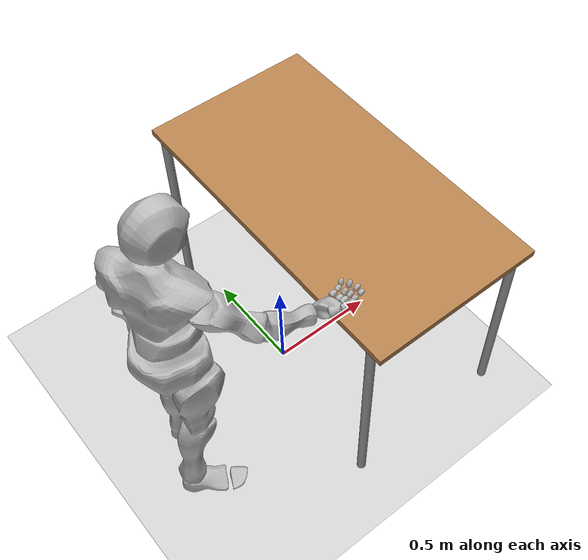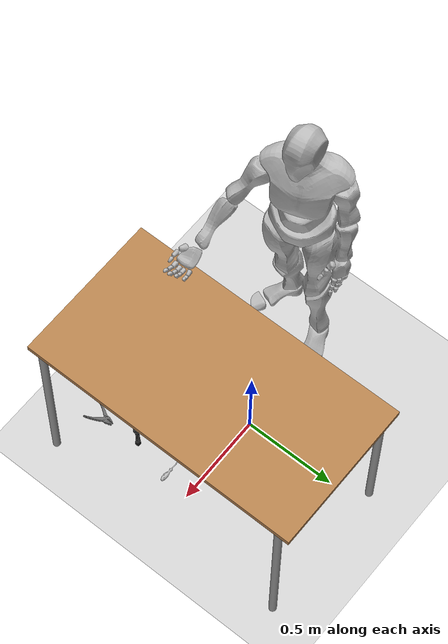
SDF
<sdf version="1.4">
 <world name="default">
  <include><uri>model://sun</uri></include>
  <include><uri>model://ground_plane</uri></include>
  <include><name>table</name><uri>model://challenge_table</uri><pose>0.3 0 -0.015 0 0 1.57</pose></include>
  <include>
   <name>screwdriver</name>
   <uri>model://challenge_screwdriver</uri>
   <pose>0.6 0 0.52 0 0 0</pose>
  </include>
  <include><name>torch</name><uri>model://challenge_torch</uri><pose>0.6 -0.2 0.52 0 0 0</pose></include>
  <include><name>pincers</name><uri>model://challenge_pincers</uri><pose>0.6 -0.4 0.52 0 0 0</pose></include>
  <include><name>human</name><uri>model://challenge_human</uri><pose>-0.5 0.0 0.0 0 0 1.57</pose></include>
 </world>
</sdf>

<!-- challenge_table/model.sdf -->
<sdf version="1.4">
  <model name="challenge_table">
    <static>true</static>
    <link name="link">
      <collision name="surface">
        <pose>0 0 1.0 0 0 0</pose>
        <geometry>
          <box>
            <size>1.5 0.8 0.03</size>
          </box>
        </geometry>
        <surface>
          <friction>
            <ode>
              <mu>0.6</mu>
              <mu2>0.6</mu2>
            </ode>
          </friction>
        </surface>
      </collision>
      <visual name="visual1">
        <pose>0 0 1.0 0 0 0</pose>
        <geometry>
          <box>
            <size>1.5 0.8 0.03</size>
          </box>
        </geometry>
        <material>
          <script>
            <uri>file://media/materials/scripts/gazebo.material</uri>
            <name>Gazebo/Wood</name>
          </script>
        </material>
      </visual>
      <collision name="front_left_leg">
        <pose>0.68 0.38 0.5 0 0 0</pose>
        <geometry>
          <cylinder>
            <radius>0.02</radius>
            <length>1.0</length>
          </cylinder>
        </geometry>
      </collision>
      <visual name="front_left_leg">
        <pose>0.68 0.38 0.5 0 0 0</pose>
        <geometry>
          <cylinder>
            <radius>0.02</radius>
            <length>1.0</length>
          </cylinder>
        </geometry>
        <material>
          <script>
            <uri>file://media/materials/scripts/gazebo.material</uri>
            <name>Gazebo/Grey</name>
          </script>
        </material>
      </visual>
      <collision name="front_right_leg">
        <pose>0.68 -0.38 0.5 0 0 0</pose>
        <geometry>
          <cylinder>
            <radius>0.02</radius>
            <length>1.0</length>
          </cylinder>
        </geometry>
      </collision>
      <visual name="front_right_leg">
        <pose>0.68 -0.38 0.5 0 0 0</pose>
        <geometry>
          <cylinder>
            <radius>0.02</radius>
            <length>1.0</length>
          </cylinder>
        </geometry>
        <material>
          <script>
            <uri>file://media/materials/scripts/gazebo.material</uri>
            <name>Gazebo/Grey</name>
          </script>
        </material>
      </visual>
      <collision name="back_right_leg">
        <pose>-0.68 -0.38 0.5 0 0 0</pose>
        <geometry>
          <cylinder>
            <radius>0.02</radius>
            <length>1.0</length>
          </cylinder>
        </geometry>
      </collision>
      <visual name="back_right_leg">
        <pose>-0.68 -0.38 0.5 0 0 0</pose>
        <geometry>
          <cylinder>
            <radius>0.02</radius>
            <length>1.0</length>
          </cylinder>
        </geometry>
        <material>
          <script>
            <uri>file://media/materials/scripts/gazebo.material</uri>
            <name>Gazebo/Grey</name>
          </script>
        </material>
      </visual>
      <collision name="back_left_leg">
        <pose>-0.68 0.38 0.5 0 0 0</pose>
        <geometry>
          <cylinder>
            <radius>0.02</radius>
            <length>1.0</length>
          </cylinder>
        </geometry>
      </collision>
      <visual name="back_left_leg">
        <pose>-0.68 0.38 0.5 0 0 0</pose>
        <geometry>
          <cylinder>
            <radius>0.02</radius>
            <length>1.0</length>
          </cylinder>
        </geometry>
        <material>
          <script>
            <uri>file://media/materials/scripts/gazebo.material</uri>
            <name>Gazebo/Grey</name>
          </script>
        </material>
      </visual>
    </link>
  </model>
</sdf>

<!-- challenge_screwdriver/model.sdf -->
<sdf version="1.4">
    <model name="challenge_screwdriver">
    <static>false</static>
    <link name="link">
    <inertial>
        <mass>0.05</mass>
        <inertia>
          <ixx>0.000052083</ixx>
          <ixy>0.0</ixy>
          <ixz>0.0</ixz>
          <iyy>0.000052083</iyy>
          <iyz>0.0</iyz>
          <izz>0.000020833</izz>
        </inertia>
      </inertial>
        <pose>0 0 0 0 0 0</pose>
        <collision name="collision">
            <geometry>
                <mesh>
                    <uri>model://challenge_screwdriver/mesh/challenge_screwdriver.stl</uri>
                    <scale>0.001 0.001 0.001</scale>
                </mesh>
            </geometry>
             <surface>
          <friction>
            <ode>
              <mu>30.0</mu>
              <mu2>30.0</mu2>
              <fdir1>0 0 0</fdir1>
            </ode>
          </friction>
          <contact>
            <ode>
              <kp>1000000.0</kp>
              <kd>100.0</kd>
              <min_depth>0.0025</min_depth>
              <max_vel>1.0</max_vel>
            </ode>
          </contact>
        </surface>
        </collision>
        <visual name="visual">
            <geometry>
                <mesh>
                    <uri>model://challenge_screwdriver/mesh/challenge_screwdriver.stl</uri>
                    <scale>0.001 0.001 0.001</scale>
                </mesh>
            </geometry>
        </visual>
      <velocity_decay>
        <linear>0.000000</linear>
        <angular>0.000000</angular>
      </velocity_decay>
      <self_collide>0</self_collide>
      <kinematic>0</kinematic>
      <gravity>1</gravity>
        </link>
    </model>
</sdf>

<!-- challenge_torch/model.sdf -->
<sdf version="1.4">
  <model name="challenge_torch">
    <static>false</static>
    <link name="link">
      <inertial>
        <mass>0.2</mass>
        <inertia>
          <ixx>0.00030</ixx>
          <ixy>0.0</ixy>
          <ixz>0.0</ixz>
          <iyy>0.00030</iyy>
          <iyz>0.0</iyz>
          <izz>0.000040</izz>
        </inertia>
      </inertial>

      <collision name="collision">
        <geometry>
          <mesh>
            <uri>model://challenge_torch/mesh/challenge_torch.stl</uri>
            <scale>0.001 0.001 0.001</scale>
          </mesh>
        </geometry>
        <surface>
          <friction>
            <ode>
              <mu>2.0</mu>
              <mu2>2.0</mu2>
              <fdir1>1 0 0</fdir1>
            </ode>
          </friction>
          <contact>
            <ode>
              <kp>2000000.0</kp>
              <kd>200.0</kd>
              <min_depth>0.0015</min_depth>
              <max_vel>0.5</max_vel>
            </ode>
          </contact>
        </surface>
      </collision>

      <visual name="visual">
        <geometry>
          <mesh>
            <uri>model://challenge_torch/mesh/challenge_torch.stl</uri>
            <scale>0.001 0.001 0.001</scale>
          </mesh>
        </geometry>
        <material>
          <ambient>0.05 0.05 0.05 1</ambient>
          <diffuse>0.1 0.1 0.1 1</diffuse>
          <specular>0.3 0.3 0.3 1</specular>
          <emissive>0 0 0 1</emissive>
        </material>
      </visual>

      <velocity_decay>
        <linear>0.0</linear>
        <angular>0.0</angular>
      </velocity_decay>
      <self_collide>false</self_collide>
      <kinematic>false</kinematic>
      <gravity>true</gravity>
    </link>
  </model>
</sdf>

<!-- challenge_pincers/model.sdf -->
<sdf version="1.4">
  <model name="challenge_pincers">
    <static>false</static>
    <link name="link">
      <inertial>
        <mass>0.25</mass>
        <inertia>
          <ixx>0.0005</ixx>
          <ixy>0.0</ixy>
          <ixz>0.0</ixz>
          <iyy>0.0007</iyy>
          <iyz>0.0</iyz>
          <izz>0.00015</izz>
        </inertia>
      </inertial>

      <!-- Collision -->
      <collision name="collision">
        <geometry>
          <mesh>
            <uri>model://challenge_pincers/mesh/challenge_pincers.stl</uri>
            <scale>0.001 0.001 0.001</scale>
          </mesh>
        </geometry>
        <surface>
          <friction>
            <ode>
              <mu>1.5</mu>
              <mu2>1.5</mu2>
              <fdir1>0 0 0</fdir1>
            </ode>
          </friction>
          <contact>
            <ode>
              <kp>5000000.0</kp>
              <kd>500.0</kd>
              <min_depth>0.001</min_depth>
              <max_vel>0.5</max_vel>
            </ode>
          </contact>
        </surface>
      </collision>

      <!-- Visual -->
      <visual name="visual">
        <geometry>
          <mesh>
            <uri>model://challenge_pincers/mesh/challenge_pincers.stl</uri>
            <scale>0.001 0.001 0.001</scale>
          </mesh>
        </geometry>
        <material>
          <ambient>0.2 0.2 0.2 1</ambient>    <!-- Dark gray -->
          <diffuse>0.4 0.4 0.4 1</diffuse>    <!-- Brushed steel look -->
          <specular>0.7 0.7 0.7 1</specular>  <!-- Shiny metallic -->
          <emissive>0 0 0 1</emissive>
        </material>
      </visual>

      <!-- Other physics properties -->
      <velocity_decay>
        <linear>0.0</linear>
        <angular>0.0</angular>
      </velocity_decay>
      <self_collide>false</self_collide>
      <kinematic>false</kinematic>
      <gravity>true</gravity>
    </link>
  </model>
</sdf>

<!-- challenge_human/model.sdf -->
<sdf version="1.6">
  <model name="challenge_human">

    <static>true</static> <!-- rimane fermo nella scena -->

    <link name="link">
      <collision name="collision">
        <geometry>
          <mesh>
            <uri>model://challenge_human/mesh/human_model.stl</uri>
            <scale>1 1 1</scale>
          </mesh>
        </geometry>
      </collision>
    <visual name="visual">
        <geometry>
          <mesh>
            <uri>model://challenge_human/mesh/human_model.stl</uri>
            <scale>1 1 1</scale>
          </mesh>
        </geometry>
      </visual>

    </link>
  </model>
</sdf>
